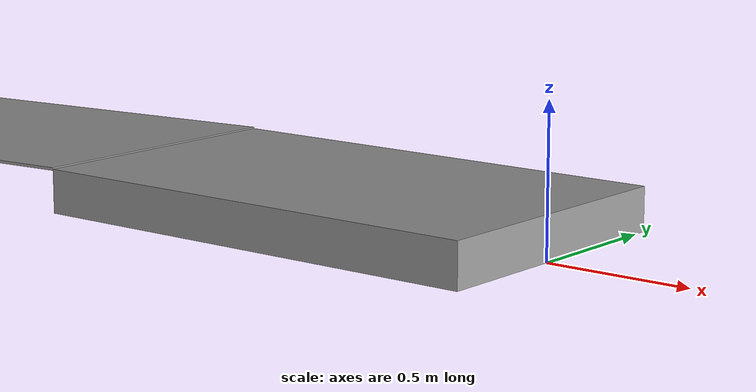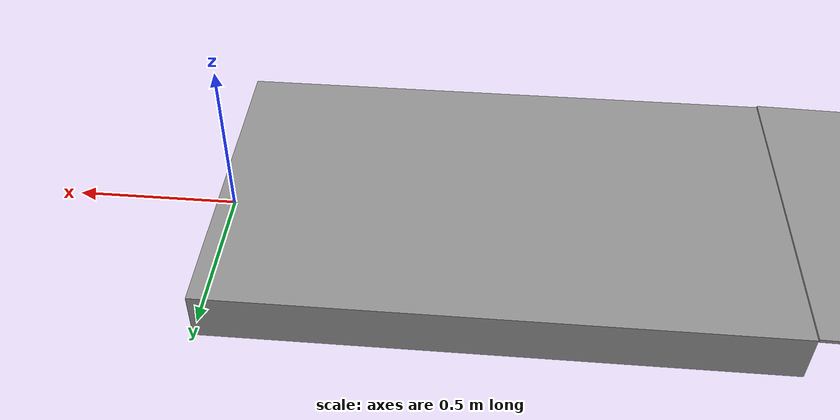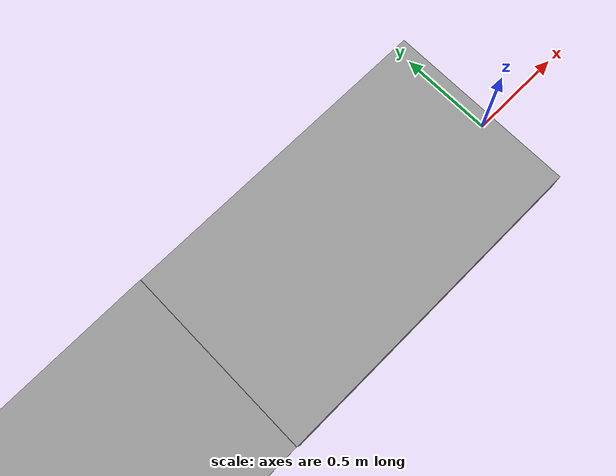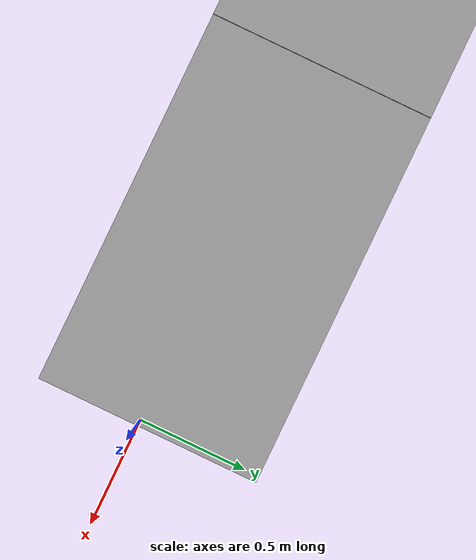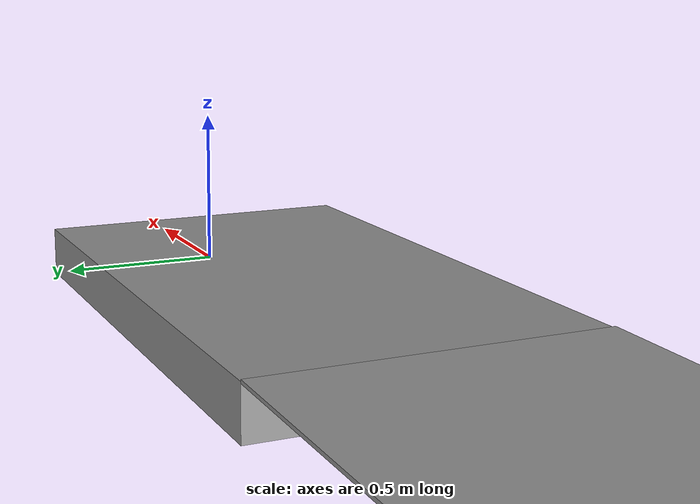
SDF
<?xml version='1.0'?>
 <sdf version='1.5'>
  <model name="siar_ramp">

   <pose>-0.837461 0.048649 0.075 0 0 3.141529</pose>
   <static>true</static>

    <link name='ramp'>

      <collision name='collision_1'>
	<pose>0 0 0 0 0 0</pose>
        <geometry>
          <box>
            <size>1.67458 1.0 0.15</size>
          </box>
        </geometry>
      </collision>
      <visual name='visual_1'>
	<pose>0 0 0 0 0 0</pose>
        <geometry>
          <box>
            <size>1.67458 1.0 0.15</size>
          </box>
        </geometry>
        <material>
          <script>
            <name>Gazebo/Grey</name>
          </script>
        </material>
      </visual>
      <collision name='collision_2'>
      <pose>3.98729 0 0 0 0.023809 0</pose>
        <geometry>
          <box>
            <size>6.3 1.0 0.01</size>
          </box>
        </geometry>
      </collision>
      <visual name='visual_2'>
      <pose>3.98729 0 0 0 0.023809 0</pose>
        <geometry>
          <box>
            <size>6.3 1.0 0.01</size>
          </box>
        </geometry>
        <material>
          <script>
            <name>Gazebo/Grey</name>
          </script>
        </material>
      </visual>
    </link>

    <joint type="fixed" name="joint_steps">
      <pose>-3.15 0 0 0 0 0</pose>
      <child>second_step</child>
      <parent>first_step</parent>
    </joint>

  </model>
</sdf>
